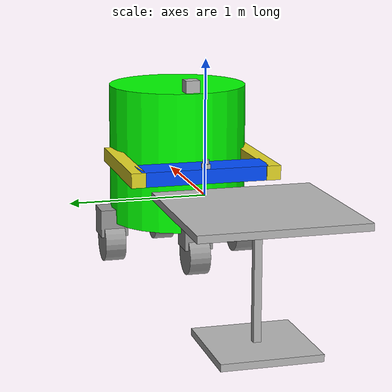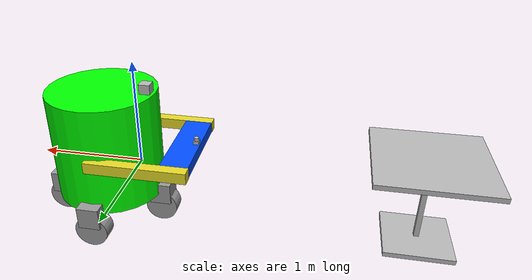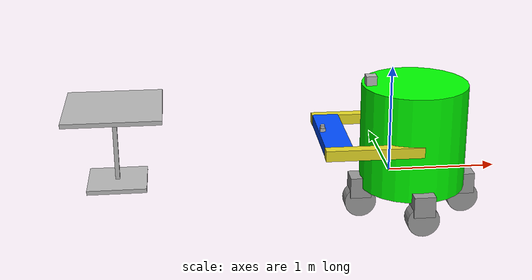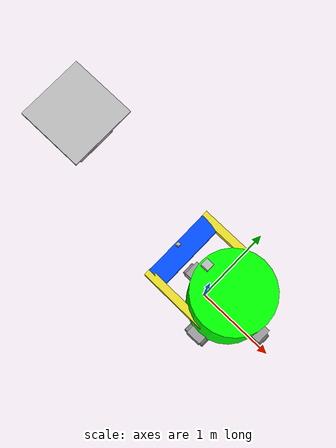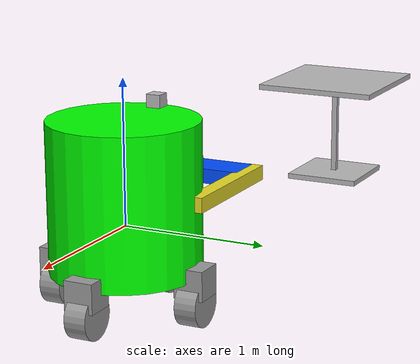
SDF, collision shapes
<?xml version='1.0'?>
<sdf version='1.6'>
  <model name='robotmodel'>
    <link name='link_0'>
      <inertial>
        <mass>1</mass>
        <inertia>
          <ixx>0.145833</ixx>
          <ixy>0</ixy>
          <ixz>0</ixz>
          <iyy>0.145833</iyy>
          <iyz>0</iyz>
          <izz>0.125</izz>
        </inertia>
        <pose frame=''>0 0 0 0 -0 0</pose>
      </inertial>
      <pose frame=''>0.250732 0.144635 -0.207594 0 -0 0.00214</pose>
      <gravity>1</gravity>
      <self_collide>0</self_collide>
      <kinematic>0</kinematic>
      <enable_wind>0</enable_wind>
      <visual name='visual'>
        <pose frame=''>0 0 0.5 0 -0 0</pose>
        <geometry>
          <cylinder>
            <radius>0.5</radius>
            <length>1</length>
          </cylinder>
        </geometry>
        <material>
          <lighting>1</lighting>
          <script>
            <uri>file://media/materials/scripts/gazebo.material</uri>
            <name>Gazebo/Grey</name>
          </script>
          <shader type='vertex'>
            <normal_map>__default__</normal_map>
          </shader>
          <ambient>0 1 0 1</ambient>
          <diffuse>0.7 0.7 0.7 1</diffuse>
          <specular>0.01 0.01 0.01 1</specular>
          <emissive>0 0 0 1</emissive>
        </material>
        <transparency>0</transparency>
        <cast_shadows>1</cast_shadows>
      </visual>
      <collision name='collision'>
        <laser_retro>0</laser_retro>
        <max_contacts>10</max_contacts>
        <pose frame=''>0 0 0.5 0 -0 0</pose>
        <geometry>
          <cylinder>
            <radius>0.5</radius>
            <length>1</length>
          </cylinder>
        </geometry>
        <surface>
          <friction>
            <ode>
              <mu>1</mu>
              <mu2>1</mu2>
              <fdir1>0 0 0</fdir1>
              <slip1>0</slip1>
              <slip2>0</slip2>
            </ode>
            <torsional>
              <coefficient>1</coefficient>
              <patch_radius>0</patch_radius>
              <surface_radius>0</surface_radius>
              <use_patch_radius>1</use_patch_radius>
              <ode>
                <slip>0</slip>
              </ode>
            </torsional>
          </friction>
          <bounce>
            <restitution_coefficient>0</restitution_coefficient>
            <threshold>1e+06</threshold>
          </bounce>
          <contact>
            <collide_without_contact>0</collide_without_contact>
            <collide_without_contact_bitmask>1</collide_without_contact_bitmask>
            <collide_bitmask>1</collide_bitmask>
            <ode>
              <soft_cfm>0</soft_cfm>
              <soft_erp>0.2</soft_erp>
              <kp>1e+13</kp>
              <kd>1</kd>
              <max_vel>0.01</max_vel>
              <min_depth>0</min_depth>
            </ode>
            <bullet>
              <split_impulse>1</split_impulse>
              <split_impulse_penetration_threshold>-0.01</split_impulse_penetration_threshold>
              <soft_cfm>0</soft_cfm>
              <soft_erp>0.2</soft_erp>
              <kp>1e+13</kp>
              <kd>1</kd>
            </bullet>
          </contact>
        </surface>
      </collision>
    </link>
    <link name='link_1'>
      <inertial>
        <mass>0.2</mass>
        <inertia>
          <ixx>0.00133333</ixx>
          <ixy>0</ixy>
          <ixz>0</ixz>
          <iyy>0.00133333</iyy>
          <iyz>0</iyz>
          <izz>0.00133333</izz>
        </inertia>
        <pose frame=''>0 0 0 0 -0 0</pose>
      </inertial>
      <pose frame=''>-0.249268 0.144635 -0.207594 0 -0 0</pose>
      <gravity>1</gravity>
      <self_collide>0</self_collide>
      <kinematic>0</kinematic>
      <enable_wind>0</enable_wind>
      <visual name='visual'>
        <pose frame=''>0 0 0 0 -0 0</pose>
        <geometry>
          <box>
            <size>0.2 0.2 0.2</size>
          </box>
        </geometry>
        <material>
          <lighting>1</lighting>
          <script>
            <uri>file://media/materials/scripts/gazebo.material</uri>
            <name>Gazebo/Grey</name>
          </script>
          <shader type='vertex'>
            <normal_map>__default__</normal_map>
          </shader>
          <ambient>0 0 0 1</ambient>
          <diffuse>0.7 0.7 0.7 1</diffuse>
          <specular>0.01 0.01 0.01 1</specular>
          <emissive>0 0 0 1</emissive>
        </material>
        <transparency>0</transparency>
        <cast_shadows>1</cast_shadows>
      </visual>
      <collision name='collision'>
        <laser_retro>0</laser_retro>
        <max_contacts>10</max_contacts>
        <pose frame=''>0 0 0 0 -0 0</pose>
        <geometry>
          <box>
            <size>0.2 0.2 0.2</size>
          </box>
        </geometry>
        <surface>
          <friction>
            <ode>
              <mu>1</mu>
              <mu2>1</mu2>
              <fdir1>0 0 0</fdir1>
              <slip1>0</slip1>
              <slip2>0</slip2>
            </ode>
            <torsional>
              <coefficient>1</coefficient>
              <patch_radius>0</patch_radius>
              <surface_radius>0</surface_radius>
              <use_patch_radius>1</use_patch_radius>
              <ode>
                <slip>0</slip>
              </ode>
            </torsional>
          </friction>
          <bounce>
            <restitution_coefficient>0</restitution_coefficient>
            <threshold>1e+06</threshold>
          </bounce>
          <contact>
            <collide_without_contact>0</collide_without_contact>
            <collide_without_contact_bitmask>1</collide_without_contact_bitmask>
            <collide_bitmask>1</collide_bitmask>
            <ode>
              <soft_cfm>0</soft_cfm>
              <soft_erp>0.2</soft_erp>
              <kp>1e+13</kp>
              <kd>1</kd>
              <max_vel>0.01</max_vel>
              <min_depth>0</min_depth>
            </ode>
            <bullet>
              <split_impulse>1</split_impulse>
              <split_impulse_penetration_threshold>-0.01</split_impulse_penetration_threshold>
              <soft_cfm>0</soft_cfm>
              <soft_erp>0.2</soft_erp>
              <kp>1e+13</kp>
              <kd>1</kd>
            </bullet>
          </contact>
        </surface>
      </collision>
    </link>
    <link name='link_1_clone'>
      <inertial>
        <mass>0.2</mass>
        <inertia>
          <ixx>0.00133333</ixx>
          <ixy>0</ixy>
          <ixz>0</ixz>
          <iyy>0.00133333</iyy>
          <iyz>0</iyz>
          <izz>0.00133333</izz>
        </inertia>
        <pose frame=''>0 0 0 0 -0 0</pose>
      </inertial>
      <pose frame=''>0.250732 0.644635 -0.207594 0 -0 0</pose>
      <gravity>1</gravity>
      <self_collide>0</self_collide>
      <kinematic>0</kinematic>
      <enable_wind>0</enable_wind>
      <visual name='visual'>
        <pose frame=''>0 0 0 0 -0 0</pose>
        <geometry>
          <box>
            <size>0.2 0.2 0.2</size>
          </box>
        </geometry>
        <material>
          <lighting>1</lighting>
          <script>
            <uri>file://media/materials/scripts/gazebo.material</uri>
            <name>Gazebo/Grey</name>
          </script>
          <shader type='vertex'>
            <normal_map>__default__</normal_map>
          </shader>
          <ambient>0 0 0 1</ambient>
          <diffuse>0.7 0.7 0.7 1</diffuse>
          <specular>0.01 0.01 0.01 1</specular>
          <emissive>0 0 0 1</emissive>
        </material>
        <transparency>0</transparency>
        <cast_shadows>1</cast_shadows>
      </visual>
      <collision name='collision'>
        <laser_retro>0</laser_retro>
        <max_contacts>10</max_contacts>
        <pose frame=''>0 0 0 0 -0 0</pose>
        <geometry>
          <box>
            <size>0.2 0.2 0.2</size>
          </box>
        </geometry>
        <surface>
          <friction>
            <ode>
              <mu>1</mu>
              <mu2>1</mu2>
              <fdir1>0 0 0</fdir1>
              <slip1>0</slip1>
              <slip2>0</slip2>
            </ode>
            <torsional>
              <coefficient>1</coefficient>
              <patch_radius>0</patch_radius>
              <surface_radius>0</surface_radius>
              <use_patch_radius>1</use_patch_radius>
              <ode>
                <slip>0</slip>
              </ode>
            </torsional>
          </friction>
          <bounce>
            <restitution_coefficient>0</restitution_coefficient>
            <threshold>1e+06</threshold>
          </bounce>
          <contact>
            <collide_without_contact>0</collide_without_contact>
            <collide_without_contact_bitmask>1</collide_without_contact_bitmask>
            <collide_bitmask>1</collide_bitmask>
            <ode>
              <soft_cfm>0</soft_cfm>
              <soft_erp>0.2</soft_erp>
              <kp>1e+13</kp>
              <kd>1</kd>
              <max_vel>0.01</max_vel>
              <min_depth>0</min_depth>
            </ode>
            <bullet>
              <split_impulse>1</split_impulse>
              <split_impulse_penetration_threshold>-0.01</split_impulse_penetration_threshold>
              <soft_cfm>0</soft_cfm>
              <soft_erp>0.2</soft_erp>
              <kp>1e+13</kp>
              <kd>1</kd>
            </bullet>
          </contact>
        </surface>
      </collision>
    </link>
    <link name='link_1_clone_0'>
      <inertial>
        <mass>0.2</mass>
        <inertia>
          <ixx>0.00133333</ixx>
          <ixy>0</ixy>
          <ixz>0</ixz>
          <iyy>0.00133333</iyy>
          <iyz>0</iyz>
          <izz>0.00133333</izz>
        </inertia>
        <pose frame=''>0 0 0 0 -0 0</pose>
      </inertial>
      <pose frame=''>0.750732 0.144635 -0.207594 0 -0 0</pose>
      <gravity>1</gravity>
      <self_collide>0</self_collide>
      <kinematic>0</kinematic>
      <enable_wind>0</enable_wind>
      <visual name='visual'>
        <pose frame=''>0 0 0 0 -0 0</pose>
        <geometry>
          <box>
            <size>0.2 0.2 0.2</size>
          </box>
        </geometry>
        <material>
          <lighting>1</lighting>
          <script>
            <uri>file://media/materials/scripts/gazebo.material</uri>
            <name>Gazebo/Grey</name>
          </script>
          <shader type='vertex'>
            <normal_map>__default__</normal_map>
          </shader>
          <ambient>0 0 0 1</ambient>
          <diffuse>0.7 0.7 0.7 1</diffuse>
          <specular>0.01 0.01 0.01 1</specular>
          <emissive>0 0 0 1</emissive>
        </material>
        <transparency>0</transparency>
        <cast_shadows>1</cast_shadows>
      </visual>
      <collision name='collision'>
        <laser_retro>0</laser_retro>
        <max_contacts>10</max_contacts>
        <pose frame=''>0 0 0 0 -0 0</pose>
        <geometry>
          <box>
            <size>0.2 0.2 0.2</size>
          </box>
        </geometry>
        <surface>
          <friction>
            <ode>
              <mu>1</mu>
              <mu2>1</mu2>
              <fdir1>0 0 0</fdir1>
              <slip1>0</slip1>
              <slip2>0</slip2>
            </ode>
            <torsional>
              <coefficient>1</coefficient>
              <patch_radius>0</patch_radius>
              <surface_radius>0</surface_radius>
              <use_patch_radius>1</use_patch_radius>
              <ode>
                <slip>0</slip>
              </ode>
            </torsional>
          </friction>
          <bounce>
            <restitution_coefficient>0</restitution_coefficient>
            <threshold>1e+06</threshold>
          </bounce>
          <contact>
            <collide_without_contact>0</collide_without_contact>
            <collide_without_contact_bitmask>1</collide_without_contact_bitmask>
            <collide_bitmask>1</collide_bitmask>
            <ode>
              <soft_cfm>0</soft_cfm>
              <soft_erp>0.2</soft_erp>
              <kp>1e+13</kp>
              <kd>1</kd>
              <max_vel>0.01</max_vel>
              <min_depth>0</min_depth>
            </ode>
            <bullet>
              <split_impulse>1</split_impulse>
              <split_impulse_penetration_threshold>-0.01</split_impulse_penetration_threshold>
              <soft_cfm>0</soft_cfm>
              <soft_erp>0.2</soft_erp>
              <kp>1e+13</kp>
              <kd>1</kd>
            </bullet>
          </contact>
        </surface>
      </collision>
    </link>
    <link name='link_1_clone_1'>
      <inertial>
        <mass>0.2</mass>
        <inertia>
          <ixx>0.00133333</ixx>
          <ixy>0</ixy>
          <ixz>0</ixz>
          <iyy>0.00133333</iyy>
          <iyz>0</iyz>
          <izz>0.00133333</izz>
        </inertia>
        <pose frame=''>0 0 0 0 -0 0</pose>
      </inertial>
      <pose frame=''>0.250732 -0.355365 -0.207594 0 -0 0</pose>
      <gravity>1</gravity>
      <self_collide>0</self_collide>
      <kinematic>0</kinematic>
      <enable_wind>0</enable_wind>
      <visual name='visual'>
        <pose frame=''>0 0 0 0 -0 0</pose>
        <geometry>
          <box>
            <size>0.2 0.2 0.2</size>
          </box>
        </geometry>
        <material>
          <lighting>1</lighting>
          <script>
            <uri>file://media/materials/scripts/gazebo.material</uri>
            <name>Gazebo/Grey</name>
          </script>
          <shader type='vertex'>
            <normal_map>__default__</normal_map>
          </shader>
          <ambient>0 0 0 1</ambient>
          <diffuse>0.7 0.7 0.7 1</diffuse>
          <specular>0.01 0.01 0.01 1</specular>
          <emissive>0 0 0 1</emissive>
        </material>
        <transparency>0</transparency>
        <cast_shadows>1</cast_shadows>
      </visual>
      <collision name='collision'>
        <laser_retro>0</laser_retro>
        <max_contacts>10</max_contacts>
        <pose frame=''>0 0 0 0 -0 0</pose>
        <geometry>
          <box>
            <size>0.2 0.2 0.2</size>
          </box>
        </geometry>
        <surface>
          <friction>
            <ode>
              <mu>1</mu>
              <mu2>1</mu2>
              <fdir1>0 0 0</fdir1>
              <slip1>0</slip1>
              <slip2>0</slip2>
            </ode>
            <torsional>
              <coefficient>1</coefficient>
              <patch_radius>0</patch_radius>
              <surface_radius>0</surface_radius>
              <use_patch_radius>1</use_patch_radius>
              <ode>
                <slip>0</slip>
              </ode>
            </torsional>
          </friction>
          <bounce>
            <restitution_coefficient>0</restitution_coefficient>
            <threshold>1e+06</threshold>
          </bounce>
          <contact>
            <collide_without_contact>0</collide_without_contact>
            <collide_without_contact_bitmask>1</collide_without_contact_bitmask>
            <collide_bitmask>1</collide_bitmask>
            <ode>
              <soft_cfm>0</soft_cfm>
              <soft_erp>0.2</soft_erp>
              <kp>1e+13</kp>
              <kd>1</kd>
              <max_vel>0.01</max_vel>
              <min_depth>0</min_depth>
            </ode>
            <bullet>
              <split_impulse>1</split_impulse>
              <split_impulse_penetration_threshold>-0.01</split_impulse_penetration_threshold>
              <soft_cfm>0</soft_cfm>
              <soft_erp>0.2</soft_erp>
              <kp>1e+13</kp>
              <kd>1</kd>
            </bullet>
          </contact>
        </surface>
      </collision>
    </link>
    <link name='link_2'>
      <inertial>
        <mass>0.2</mass>
        <inertia>
          <ixx>0.0291667</ixx>
          <ixy>0</ixy>
          <ixz>0</ixz>
          <iyy>0.0291667</iyy>
          <iyz>0</iyz>
          <izz>0.025</izz>
        </inertia>
        <pose frame=''>0 0 0 0 -0 0</pose>
      </inertial>
      <pose frame=''>0.750732 0.144635 -0.357594 -1.57 0 0</pose>
      <gravity>1</gravity>
      <self_collide>0</self_collide>
      <kinematic>0</kinematic>
      <enable_wind>0</enable_wind>
      <visual name='visual'>
        <pose frame=''>0 0 0 0 -0 0</pose>
        <geometry>
          <cylinder>
            <radius>0.15</radius>
            <length>0.15</length>
          </cylinder>
        </geometry>
        <material>
          <lighting>1</lighting>
          <script>
            <uri>file://media/materials/scripts/gazebo.material</uri>
            <name>Gazebo/Grey</name>
          </script>
          <shader type='vertex'>
            <normal_map>__default__</normal_map>
          </shader>
          <ambient>0 0 0 1</ambient>
          <diffuse>0.7 0.7 0.7 1</diffuse>
          <specular>0.01 0.01 0.01 1</specular>
          <emissive>0 0 0 1</emissive>
        </material>
        <transparency>0</transparency>
        <cast_shadows>1</cast_shadows>
      </visual>
      <collision name='collision'>
        <laser_retro>0</laser_retro>
        <max_contacts>10</max_contacts>
        <pose frame=''>0 0 0 0 -0 0</pose>
        <geometry>
          <cylinder>
            <radius>0.15</radius>
            <length>0.15</length>
          </cylinder>
        </geometry>
        <surface>
          <friction>
            <ode>
              <mu>1</mu>
              <mu2>1</mu2>
              <fdir1>0 0 0</fdir1>
              <slip1>0</slip1>
              <slip2>0</slip2>
            </ode>
            <torsional>
              <coefficient>1</coefficient>
              <patch_radius>0</patch_radius>
              <surface_radius>0</surface_radius>
              <use_patch_radius>1</use_patch_radius>
              <ode>
                <slip>0</slip>
              </ode>
            </torsional>
          </friction>
          <bounce>
            <restitution_coefficient>0</restitution_coefficient>
            <threshold>1e+06</threshold>
          </bounce>
          <contact>
            <collide_without_contact>0</collide_without_contact>
            <collide_without_contact_bitmask>1</collide_without_contact_bitmask>
            <collide_bitmask>1</collide_bitmask>
            <ode>
              <soft_cfm>0</soft_cfm>
              <soft_erp>0.2</soft_erp>
              <kp>1e+13</kp>
              <kd>1</kd>
              <max_vel>0.01</max_vel>
              <min_depth>0</min_depth>
            </ode>
            <bullet>
              <split_impulse>1</split_impulse>
              <split_impulse_penetration_threshold>-0.01</split_impulse_penetration_threshold>
              <soft_cfm>0</soft_cfm>
              <soft_erp>0.2</soft_erp>
              <kp>1e+13</kp>
              <kd>1</kd>
            </bullet>
          </contact>
        </surface>
      </collision>
    </link>
    <link name='link_2_clone'>
      <inertial>
        <mass>0.2</mass>
        <inertia>
          <ixx>0.0291667</ixx>
          <ixy>0</ixy>
          <ixz>0</ixz>
          <iyy>0.0291667</iyy>
          <iyz>0</iyz>
          <izz>0.025</izz>
        </inertia>
        <pose frame=''>0 0 0 0 -0 0</pose>
      </inertial>
      <pose frame=''>0.250732 -0.355365 -0.357594 -1.57 0 0</pose>
      <gravity>1</gravity>
      <self_collide>0</self_collide>
      <kinematic>0</kinematic>
      <enable_wind>0</enable_wind>
      <visual name='visual'>
        <pose frame=''>0 0 0 0 -0 0</pose>
        <geometry>
          <cylinder>
            <radius>0.15</radius>
            <length>0.15</length>
          </cylinder>
        </geometry>
        <material>
          <lighting>1</lighting>
          <script>
            <uri>file://media/materials/scripts/gazebo.material</uri>
            <name>Gazebo/Grey</name>
          </script>
          <shader type='vertex'>
            <normal_map>__default__</normal_map>
          </shader>
          <ambient>0 0 0 1</ambient>
          <diffuse>0.7 0.7 0.7 1</diffuse>
          <specular>0.01 0.01 0.01 1</specular>
          <emissive>0 0 0 1</emissive>
        </material>
        <transparency>0</transparency>
        <cast_shadows>1</cast_shadows>
      </visual>
      <collision name='collision'>
        <laser_retro>0</laser_retro>
        <max_contacts>10</max_contacts>
        <pose frame=''>0 0 0 0 -0 0</pose>
        <geometry>
          <cylinder>
            <radius>0.15</radius>
            <length>0.15</length>
          </cylinder>
        </geometry>
        <surface>
          <friction>
            <ode>
              <mu>1</mu>
              <mu2>1</mu2>
              <fdir1>0 0 0</fdir1>
              <slip1>0</slip1>
              <slip2>0</slip2>
            </ode>
            <torsional>
              <coefficient>1</coefficient>
              <patch_radius>0</patch_radius>
              <surface_radius>0</surface_radius>
              <use_patch_radius>1</use_patch_radius>
              <ode>
                <slip>0</slip>
              </ode>
            </torsional>
          </friction>
          <bounce>
            <restitution_coefficient>0</restitution_coefficient>
            <threshold>1e+06</threshold>
          </bounce>
          <contact>
            <collide_without_contact>0</collide_without_contact>
            <collide_without_contact_bitmask>1</collide_without_contact_bitmask>
            <collide_bitmask>1</collide_bitmask>
            <ode>
              <soft_cfm>0</soft_cfm>
              <soft_erp>0.2</soft_erp>
              <kp>1e+13</kp>
              <kd>1</kd>
              <max_vel>0.01</max_vel>
              <min_depth>0</min_depth>
            </ode>
            <bullet>
              <split_impulse>1</split_impulse>
              <split_impulse_penetration_threshold>-0.01</split_impulse_penetration_threshold>
              <soft_cfm>0</soft_cfm>
              <soft_erp>0.2</soft_erp>
              <kp>1e+13</kp>
              <kd>1</kd>
            </bullet>
          </contact>
        </surface>
      </collision>
    </link>
    <link name='link_2_clone_0'>
      <inertial>
        <mass>0.2</mass>
        <inertia>
          <ixx>0.0291667</ixx>
          <ixy>0</ixy>
          <ixz>0</ixz>
          <iyy>0.0291667</iyy>
          <iyz>0</iyz>
          <izz>0.025</izz>
        </inertia>
        <pose frame=''>0 0 0 0 -0 0</pose>
      </inertial>
      <pose frame=''>-0.249268 0.144635 -0.357594 -1.57 0 0</pose>
      <gravity>1</gravity>
      <self_collide>0</self_collide>
      <kinematic>0</kinematic>
      <enable_wind>0</enable_wind>
      <visual name='visual'>
        <pose frame=''>0 0 0 0 -0 0</pose>
        <geometry>
          <cylinder>
            <radius>0.15</radius>
            <length>0.15</length>
          </cylinder>
        </geometry>
        <material>
          <lighting>1</lighting>
          <script>
            <uri>file://media/materials/scripts/gazebo.material</uri>
            <name>Gazebo/Grey</name>
          </script>
          <shader type='vertex'>
            <normal_map>__default__</normal_map>
          </shader>
          <ambient>0 0 0 1</ambient>
          <diffuse>0.7 0.7 0.7 1</diffuse>
          <specular>0.01 0.01 0.01 1</specular>
          <emissive>0 0 0 1</emissive>
        </material>
        <transparency>0</transparency>
        <cast_shadows>1</cast_shadows>
      </visual>
      <collision name='collision'>
        <laser_retro>0</laser_retro>
        <max_contacts>10</max_contacts>
        <pose frame=''>0 0 0 0 -0 0</pose>
        <geometry>
          <cylinder>
            <radius>0.15</radius>
            <length>0.15</length>
          </cylinder>
        </geometry>
        <surface>
          <friction>
            <ode>
              <mu>1</mu>
              <mu2>1</mu2>
              <fdir1>0 0 0</fdir1>
              <slip1>0</slip1>
              <slip2>0</slip2>
            </ode>
            <torsional>
              <coefficient>1</coefficient>
              <patch_radius>0</patch_radius>
              <surface_radius>0</surface_radius>
              <use_patch_radius>1</use_patch_radius>
              <ode>
                <slip>0</slip>
              </ode>
            </torsional>
          </friction>
          <bounce>
            <restitution_coefficient>0</restitution_coefficient>
            <threshold>1e+06</threshold>
          </bounce>
          <contact>
            <collide_without_contact>0</collide_without_contact>
            <collide_without_contact_bitmask>1</collide_without_contact_bitmask>
            <collide_bitmask>1</collide_bitmask>
            <ode>
              <soft_cfm>0</soft_cfm>
              <soft_erp>0.2</soft_erp>
              <kp>1e+13</kp>
              <kd>1</kd>
              <max_vel>0.01</max_vel>
              <min_depth>0</min_depth>
            </ode>
            <bullet>
              <split_impulse>1</split_impulse>
              <split_impulse_penetration_threshold>-0.01</split_impulse_penetration_threshold>
              <soft_cfm>0</soft_cfm>
              <soft_erp>0.2</soft_erp>
              <kp>1e+13</kp>
              <kd>1</kd>
            </bullet>
          </contact>
        </surface>
      </collision>
    </link>
    <link name='link_2_clone_1'>
      <inertial>
        <mass>0.2</mass>
        <inertia>
          <ixx>0.0291667</ixx>
          <ixy>0</ixy>
          <ixz>0</ixz>
          <iyy>0.0291667</iyy>
          <iyz>0</iyz>
          <izz>0.025</izz>
        </inertia>
        <pose frame=''>0 0 0 0 -0 0</pose>
      </inertial>
      <pose frame=''>0.250732 0.644635 -0.357594 -1.57 0 0</pose>
      <gravity>1</gravity>
      <self_collide>0</self_collide>
      <kinematic>0</kinematic>
      <enable_wind>0</enable_wind>
      <visual name='visual'>
        <pose frame=''>0 0 0 0 -0 0</pose>
        <geometry>
          <cylinder>
            <radius>0.15</radius>
            <length>0.15</length>
          </cylinder>
        </geometry>
        <material>
          <lighting>1</lighting>
          <script>
            <uri>file://media/materials/scripts/gazebo.material</uri>
            <name>Gazebo/Grey</name>
          </script>
          <shader type='vertex'>
            <normal_map>__default__</normal_map>
          </shader>
          <ambient>0 0 0 1</ambient>
          <diffuse>0.7 0.7 0.7 1</diffuse>
          <specular>0.01 0.01 0.01 1</specular>
          <emissive>0 0 0 1</emissive>
        </material>
        <transparency>0</transparency>
        <cast_shadows>1</cast_shadows>
      </visual>
      <collision name='collision'>
        <laser_retro>0</laser_retro>
        <max_contacts>10</max_contacts>
        <pose frame=''>0 0 0 0 -0 0</pose>
        <geometry>
          <cylinder>
            <radius>0.15</radius>
            <length>0.15</length>
          </cylinder>
        </geometry>
        <surface>
          <friction>
            <ode>
              <mu>1</mu>
              <mu2>1</mu2>
              <fdir1>0 0 0</fdir1>
              <slip1>0</slip1>
              <slip2>0</slip2>
            </ode>
            <torsional>
              <coefficient>1</coefficient>
              <patch_radius>0</patch_radius>
              <surface_radius>0</surface_radius>
              <use_patch_radius>1</use_patch_radius>
              <ode>
                <slip>0</slip>
              </ode>
            </torsional>
          </friction>
          <bounce>
            <restitution_coefficient>0</restitution_coefficient>
            <threshold>1e+06</threshold>
          </bounce>
          <contact>
            <collide_without_contact>0</collide_without_contact>
            <collide_without_contact_bitmask>1</collide_without_contact_bitmask>
            <collide_bitmask>1</collide_bitmask>
            <ode>
              <soft_cfm>0</soft_cfm>
              <soft_erp>0.2</soft_erp>
              <kp>1e+13</kp>
              <kd>1</kd>
              <max_vel>0.01</max_vel>
              <min_depth>0</min_depth>
            </ode>
            <bullet>
              <split_impulse>1</split_impulse>
              <split_impulse_penetration_threshold>-0.01</split_impulse_penetration_threshold>
              <soft_cfm>0</soft_cfm>
              <soft_erp>0.2</soft_erp>
              <kp>1e+13</kp>
              <kd>1</kd>
            </bullet>
          </contact>
        </surface>
      </collision>
    </link>
    <link name='link_4'>
      <inertial>
        <mass>0.1</mass>
        <inertia>
          <ixx>0.00016667</ixx>
          <ixy>0</ixy>
          <ixz>0</ixz>
          <iyy>0.00683333</iyy>
          <iyz>0</iyz>
          <izz>0.00683333</izz>
        </inertia>
        <pose frame=''>0 0 0 0 -0 0</pose>
      </inertial>
      <pose frame=''>-0.199268 -0.305365 0.292406 0 0 -0.01</pose>
      <gravity>1</gravity>
      <self_collide>0</self_collide>
      <kinematic>0</kinematic>
      <enable_wind>0</enable_wind>
      <visual name='visual'>
        <pose frame=''>0 0 0 0 -0 0</pose>
        <geometry>
          <box>
            <size>0.9 0.1 0.1</size>
          </box>
        </geometry>
        <material>
          <lighting>1</lighting>
          <script>
            <uri>file://media/materials/scripts/gazebo.material</uri>
            <name>Gazebo/Yellow</name>
          </script>
          <shader type='vertex'>
            <normal_map>__default__</normal_map>
          </shader>
          <ambient>0.3 0.3 0 1</ambient>
          <diffuse>0.7 0.7 0.7 1</diffuse>
          <specular>0.01 0.01 0.01 1</specular>
          <emissive>0 0 0 1</emissive>
        </material>
        <transparency>0</transparency>
        <cast_shadows>1</cast_shadows>
      </visual>
      <collision name='collision'>
        <laser_retro>0</laser_retro>
        <max_contacts>10</max_contacts>
        <pose frame=''>0 0 0 0 -0 0</pose>
        <geometry>
          <box>
            <size>0.9 0.1 0.1</size>
          </box>
        </geometry>
        <surface>
          <friction>
            <ode>
              <mu>1</mu>
              <mu2>1</mu2>
              <fdir1>0 0 0</fdir1>
              <slip1>0</slip1>
              <slip2>0</slip2>
            </ode>
            <torsional>
              <coefficient>1</coefficient>
              <patch_radius>0</patch_radius>
              <surface_radius>0</surface_radius>
              <use_patch_radius>1</use_patch_radius>
              <ode>
                <slip>0</slip>
              </ode>
            </torsional>
          </friction>
          <bounce>
            <restitution_coefficient>0</restitution_coefficient>
            <threshold>1e+06</threshold>
          </bounce>
          <contact>
            <collide_without_contact>0</collide_without_contact>
            <collide_without_contact_bitmask>1</collide_without_contact_bitmask>
            <collide_bitmask>1</collide_bitmask>
            <ode>
              <soft_cfm>0</soft_cfm>
              <soft_erp>0.2</soft_erp>
              <kp>1e+13</kp>
              <kd>1</kd>
              <max_vel>0.01</max_vel>
              <min_depth>0</min_depth>
            </ode>
            <bullet>
              <split_impulse>1</split_impulse>
              <split_impulse_penetration_threshold>-0.01</split_impulse_penetration_threshold>
              <soft_cfm>0</soft_cfm>
              <soft_erp>0.2</soft_erp>
              <kp>1e+13</kp>
              <kd>1</kd>
            </bullet>
          </contact>
        </surface>
      </collision>
    </link>
    <link name='link_4_clone'>
      <inertial>
        <mass>0.1</mass>
        <inertia>
          <ixx>0.00016667</ixx>
          <ixy>0</ixy>
          <ixz>0</ixz>
          <iyy>0.00683333</iyy>
          <iyz>0</iyz>
          <izz>0.00683333</izz>
        </inertia>
        <pose frame=''>0 0 0 0 -0 0</pose>
      </inertial>
      <pose frame=''>-0.199268 0.645739 0.292406 0 -0 0</pose>
      <gravity>1</gravity>
      <self_collide>0</self_collide>
      <kinematic>0</kinematic>
      <enable_wind>0</enable_wind>
      <visual name='visual'>
        <pose frame=''>0 0 0 0 -0 0</pose>
        <geometry>
          <box>
            <size>0.9 0.1 0.1</size>
          </box>
        </geometry>
        <material>
          <lighting>1</lighting>
          <script>
            <uri>file://media/materials/scripts/gazebo.material</uri>
            <name>Gazebo/Yellow</name>
          </script>
          <shader type='vertex'>
            <normal_map>__default__</normal_map>
          </shader>
          <ambient>0.3 0.3 0 1</ambient>
          <diffuse>0.7 0.7 0.7 1</diffuse>
          <specular>0.01 0.01 0.01 1</specular>
          <emissive>0 0 0 1</emissive>
        </material>
        <transparency>0</transparency>
        <cast_shadows>1</cast_shadows>
      </visual>
      <collision name='collision'>
        <laser_retro>0</laser_retro>
        <max_contacts>10</max_contacts>
        <pose frame=''>0 0 0 0 -0 0</pose>
        <geometry>
          <box>
            <size>0.9 0.1 0.1</size>
          </box>
        </geometry>
        <surface>
          <friction>
            <ode>
              <mu>1</mu>
              <mu2>1</mu2>
              <fdir1>0 0 0</fdir1>
              <slip1>0</slip1>
              <slip2>0</slip2>
            </ode>
            <torsional>
              <coefficient>1</coefficient>
              <patch_radius>0</patch_radius>
              <surface_radius>0</surface_radius>
              <use_patch_radius>1</use_patch_radius>
              <ode>
                <slip>0</slip>
              </ode>
            </torsional>
          </friction>
          <bounce>
            <restitution_coefficient>0</restitution_coefficient>
            <threshold>1e+06</threshold>
          </bounce>
          <contact>
            <collide_without_contact>0</collide_without_contact>
            <collide_without_contact_bitmask>1</collide_without_contact_bitmask>
            <collide_bitmask>1</collide_bitmask>
            <ode>
              <soft_cfm>0</soft_cfm>
              <soft_erp>0.2</soft_erp>
              <kp>1e+13</kp>
              <kd>1</kd>
              <max_vel>0.01</max_vel>
              <min_depth>0</min_depth>
            </ode>
            <bullet>
              <split_impulse>1</split_impulse>
              <split_impulse_penetration_threshold>-0.01</split_impulse_penetration_threshold>
              <soft_cfm>0</soft_cfm>
              <soft_erp>0.2</soft_erp>
              <kp>1e+13</kp>
              <kd>1</kd>
            </bullet>
          </contact>
        </surface>
      </collision>
    </link>
    <link name='link_5'>
      <inertial>
        <mass>0.1</mass>
        <inertia>
          <ixx>0.0166667</ixx>
          <ixy>0</ixy>
          <ixz>0</ixz>
          <iyy>0.0166667</iyy>
          <iyz>0</iyz>
          <izz>0.0166667</izz>
        </inertia>
        <pose frame=''>0 0 0 0 -0 0</pose>
      </inertial>
      <pose frame=''>-0.519502 0.172861 0.292406 0 -0 0</pose>
      <gravity>1</gravity>
      <self_collide>0</self_collide>
      <kinematic>0</kinematic>
      <enable_wind>0</enable_wind>
      <visual name='visual'>
        <pose frame=''>0 0 0 0 -0 0</pose>
        <geometry>
          <box>
            <size>0.25 0.9 0.1</size>
          </box>
        </geometry>
        <material>
          <lighting>1</lighting>
          <script>
            <uri>file://media/materials/scripts/gazebo.material</uri>
            <name>Gazebo/Grey</name>
          </script>
          <shader type='vertex'>
            <normal_map>__default__</normal_map>
          </shader>
          <ambient>0 0.3 1 1</ambient>
          <diffuse>0.7 0.7 0.7 1</diffuse>
          <specular>0.01 0.01 0.01 1</specular>
          <emissive>0 0 0 1</emissive>
        </material>
        <transparency>0</transparency>
        <cast_shadows>1</cast_shadows>
      </visual>
      <collision name='collision'>
        <laser_retro>0</laser_retro>
        <max_contacts>10</max_contacts>
        <pose frame=''>0 0 0 0 -0 0</pose>
        <geometry>
          <box>
            <size>0.25 0.9 0.1</size>
          </box>
        </geometry>
        <surface>
          <friction>
            <ode>
              <mu>1</mu>
              <mu2>1</mu2>
              <fdir1>0 0 0</fdir1>
              <slip1>0</slip1>
              <slip2>0</slip2>
            </ode>
            <torsional>
              <coefficient>1</coefficient>
              <patch_radius>0</patch_radius>
              <surface_radius>0</surface_radius>
              <use_patch_radius>1</use_patch_radius>
              <ode>
                <slip>0</slip>
              </ode>
            </torsional>
          </friction>
          <bounce>
            <restitution_coefficient>0</restitution_coefficient>
            <threshold>1e+06</threshold>
          </bounce>
          <contact>
            <collide_without_contact>0</collide_without_contact>
            <collide_without_contact_bitmask>1</collide_without_contact_bitmask>
            <collide_bitmask>1</collide_bitmask>
            <ode>
              <soft_cfm>0</soft_cfm>
              <soft_erp>0.2</soft_erp>
              <kp>1e+13</kp>
              <kd>1</kd>
              <max_vel>0.01</max_vel>
              <min_depth>0</min_depth>
            </ode>
            <bullet>
              <split_impulse>1</split_impulse>
              <split_impulse_penetration_threshold>-0.01</split_impulse_penetration_threshold>
              <soft_cfm>0</soft_cfm>
              <soft_erp>0.2</soft_erp>
              <kp>1e+13</kp>
              <kd>1</kd>
            </bullet>
          </contact>
        </surface>
      </collision>
    </link>
    <model name='cafe_table'>
      <static>1</static>
      <link name='link'>
        <collision name='surface'>
          <pose frame=''>0 0 0.755 0 -0 0</pose>
          <geometry>
            <box>
              <size>0.913 0.913 0.04</size>
            </box>
          </geometry>
        </collision>
        <collision name='column'>
          <pose frame=''>0 0 0.37 0 -0 0</pose>
          <geometry>
            <box>
              <size>0.042 0.042 0.74</size>
            </box>
          </geometry>
        </collision>
        <collision name='base'>
          <pose frame=''>0 0 0.02 0 -0 0</pose>
          <geometry>
            <box>
              <size>0.56 0.56 0.04</size>
            </box>
          </geometry>
        </collision>
        <visual name='visual'>
          <geometry>
            <mesh>
              <uri>model://cafe_table/meshes/cafe_table.dae</uri>
            </mesh>
          </geometry>
        </visual>
      </link>
      <pose frame=''>-2.54998 0.45038 -0.207594 0 -0 0</pose>
    </model>
    <model name='camera'>
      <pose frame=''>-0.166514 0.153695 0.830531 0 -0 0</pose>
      <link name='link'>
        <inertial>
          <mass>0.1</mass>
          <inertia>
            <ixx>0.000166667</ixx>
            <iyy>0.000166667</iyy>
            <izz>0.000166667</izz>
            <ixy>0</ixy>
            <ixz>0</ixz>
            <iyz>0</iyz>
          </inertia>
        </inertial>
        <collision name='collision'>
          <geometry>
            <box>
              <size>0.1 0.1 0.1</size>
            </box>
          </geometry>
        </collision>
        <visual name='visual'>
          <geometry>
            <box>
              <size>0.1 0.1 0.1</size>
            </box>
          </geometry>
        </visual>
        <sensor name='camera' type='camera'>
          <camera name='__default__'>
            <horizontal_fov>1.047</horizontal_fov>
            <image>
              <width>320</width>
              <height>240</height>
            </image>
            <clip>
              <near>0.1</near>
              <far>100</far>
            </clip>
          </camera>
          <always_on>1</always_on>
          <update_rate>30</update_rate>
          <visualize>1</visualize>
        </sensor>
      </link>
    </model>
    <model name='hokuyo'>
      <pose frame=''>-0.609025 0.171147 0.368203 0 -0 -1.56152</pose>
      <link name='link'>
        <inertial>
          <mass>0.1</mass>
        </inertial>
        <visual name='visual'>
          <geometry>
            <mesh>
              <uri>model://hokuyo/meshes/hokuyo.dae</uri>
            </mesh>
          </geometry>
        </visual>
        <collision name='collision-base'>
          <pose frame=''>0 0 -0.0145 0 -0 0</pose>
          <geometry>
            <box>
              <size>0.05 0.05 0.041</size>
            </box>
          </geometry>
        </collision>
        <collision name='collision-top'>
          <pose frame=''>0 0 0.0205 0 -0 0</pose>
          <geometry>
            <cylinder>
              <radius>0.021</radius>
              <length>0.029</length>
            </cylinder>
          </geometry>
        </collision>
        <sensor name='laser' type='ray'>
          <pose frame=''>0.01 0 0.0175 0 -0 0</pose>
          <ray>
            <scan>
              <horizontal>
                <samples>640</samples>
                <resolution>1</resolution>
                <min_angle>-2.26889</min_angle>
                <max_angle>2.2689</max_angle>
              </horizontal>
            </scan>
            <range>
              <min>0.08</min>
              <max>10</max>
              <resolution>0.01</resolution>
            </range>
          </ray>
          <plugin name='laser' filename='libRayPlugin.so'/>
          <always_on>1</always_on>
          <update_rate>30</update_rate>
          <visualize>1</visualize>
        </sensor>
      </link>
    </model>
    <joint name='link_0_JOINT_14' type='fixed'>
      <parent>link_0</parent>
      <child>link_4</child>
      <pose frame=''>0.45 0 0 0 -0 0</pose>
      <physics>
        <ode>
          <limit>
            <cfm>0</cfm>
            <erp>0.2</erp>
          </limit>
          <suspension>
            <cfm>0</cfm>
            <erp>0.2</erp>
          </suspension>
        </ode>
      </physics>
    </joint>
    <joint name='link_0_JOINT_15' type='fixed'>
      <parent>link_0</parent>
      <child>link_4_clone</child>
      <pose frame=''>0.45 0 0 0 -0 0</pose>
      <physics>
        <ode>
          <limit>
            <cfm>0</cfm>
            <erp>0.2</erp>
          </limit>
          <suspension>
            <cfm>0</cfm>
            <erp>0.2</erp>
          </suspension>
        </ode>
      </physics>
    </joint>
    <joint name='link_0_JOINT_20' type='fixed'>
      <parent>link_0</parent>
      <child>camera::link</child>
      <pose frame=''>0 0 0 0 0 -3.14</pose>
      <physics>
        <ode>
          <limit>
            <cfm>0</cfm>
            <erp>0.2</erp>
          </limit>
          <suspension>
            <cfm>0</cfm>
            <erp>0.2</erp>
          </suspension>
        </ode>
      </physics>
    </joint>
    <joint name='link_0_JOINT_2' type='revolute'>
      <parent>link_0</parent>
      <child>link_1</child>
      <pose frame=''>0 0 0 0 -0 0</pose>
      <axis>
        <xyz>0 0 1</xyz>
        <use_parent_model_frame>0</use_parent_model_frame>
        <limit>
          <lower>-1.79769e+308</lower>
          <upper>1.79769e+308</upper>
          <effort>-1</effort>
          <velocity>-1</velocity>
        </limit>
        <dynamics>
          <spring_reference>0</spring_reference>
          <spring_stiffness>0</spring_stiffness>
          <damping>0</damping>
        </dynamics>
      </axis>
      <physics>
        <ode>
          <limit>
            <cfm>0</cfm>
            <erp>0.2</erp>
          </limit>
          <suspension>
            <cfm>0</cfm>
            <erp>0.2</erp>
          </suspension>
        </ode>
      </physics>
    </joint>
    <joint name='link_0_JOINT_3' type='fixed'>
      <parent>link_0</parent>
      <child>link_1_clone</child>
      <pose frame=''>0 0 0 0 -0 0</pose>
      <physics>
        <ode>
          <limit>
            <cfm>0</cfm>
            <erp>0.2</erp>
          </limit>
          <suspension>
            <cfm>0</cfm>
            <erp>0.2</erp>
          </suspension>
        </ode>
      </physics>
    </joint>
    <joint name='link_0_JOINT_4' type='revolute'>
      <parent>link_0</parent>
      <child>link_1_clone_0</child>
      <pose frame=''>0 0 0 0 -0 0</pose>
      <axis>
        <xyz>0 0 1</xyz>
        <use_parent_model_frame>0</use_parent_model_frame>
        <limit>
          <lower>-1.79769e+308</lower>
          <upper>1.79769e+308</upper>
          <effort>-1</effort>
          <velocity>-1</velocity>
        </limit>
        <dynamics>
          <spring_reference>0</spring_reference>
          <spring_stiffness>0</spring_stiffness>
          <damping>0</damping>
        </dynamics>
      </axis>
      <physics>
        <ode>
          <limit>
            <cfm>0</cfm>
            <erp>0.2</erp>
          </limit>
          <suspension>
            <cfm>0</cfm>
            <erp>0.2</erp>
          </suspension>
        </ode>
      </physics>
    </joint>
    <joint name='link_0_JOINT_6' type='fixed'>
      <parent>link_0</parent>
      <child>link_1_clone_1</child>
      <pose frame=''>0 0 0 0 -0 0</pose>
      <physics>
        <ode>
          <limit>
            <cfm>0</cfm>
            <erp>0.2</erp>
          </limit>
          <suspension>
            <cfm>0</cfm>
            <erp>0.2</erp>
          </suspension>
        </ode>
      </physics>
    </joint>
    <joint name='link_1_JOINT_9' type='revolute'>
      <parent>link_1</parent>
      <child>link_2_clone_0</child>
      <pose frame=''>0 0 0 0 -0 0</pose>
      <axis>
        <xyz>-0 -0 -1</xyz>
        <use_parent_model_frame>0</use_parent_model_frame>
        <limit>
          <lower>-1.79769e+308</lower>
          <upper>1.79769e+308</upper>
          <effort>-1</effort>
          <velocity>-1</velocity>
        </limit>
        <dynamics>
          <spring_reference>0</spring_reference>
          <spring_stiffness>0</spring_stiffness>
          <damping>0</damping>
        </dynamics>
      </axis>
      <physics>
        <ode>
          <limit>
            <cfm>0</cfm>
            <erp>0.2</erp>
          </limit>
          <suspension>
            <cfm>0</cfm>
            <erp>0.2</erp>
          </suspension>
        </ode>
      </physics>
    </joint>
    <joint name='link_1_clone_0_JOINT_7' type='revolute'>
      <parent>link_1_clone_0</parent>
      <child>link_2</child>
      <pose frame=''>0 0 0 0 -0 0</pose>
      <axis>
        <xyz>-0 -0 -1</xyz>
        <use_parent_model_frame>0</use_parent_model_frame>
        <limit>
          <lower>-1.79769e+308</lower>
          <upper>1.79769e+308</upper>
          <effort>-1</effort>
          <velocity>-1</velocity>
        </limit>
        <dynamics>
          <spring_reference>0</spring_reference>
          <spring_stiffness>0</spring_stiffness>
          <damping>0</damping>
        </dynamics>
      </axis>
      <physics>
        <ode>
          <limit>
            <cfm>0</cfm>
            <erp>0.2</erp>
          </limit>
          <suspension>
            <cfm>0</cfm>
            <erp>0.2</erp>
          </suspension>
        </ode>
      </physics>
    </joint>
    <joint name='link_1_clone_1_JOINT_10' type='revolute'>
      <parent>link_1_clone_1</parent>
      <child>link_2_clone</child>
      <pose frame=''>0 0 0 0 -0 0</pose>
      <axis>
        <xyz>-0 -0 -1</xyz>
        <use_parent_model_frame>0</use_parent_model_frame>
        <limit>
          <lower>-1.79769e+308</lower>
          <upper>1.79769e+308</upper>
          <effort>-1</effort>
          <velocity>-1</velocity>
        </limit>
        <dynamics>
          <spring_reference>0</spring_reference>
          <spring_stiffness>0</spring_stiffness>
          <damping>0</damping>
        </dynamics>
      </axis>
      <physics>
        <ode>
          <limit>
            <cfm>0</cfm>
            <erp>0.2</erp>
          </limit>
          <suspension>
            <cfm>0</cfm>
            <erp>0.2</erp>
          </suspension>
        </ode>
      </physics>
    </joint>
    <joint name='link_1_clone_JOINT_8' type='revolute'>
      <parent>link_1_clone</parent>
      <child>link_2_clone_1</child>
      <pose frame=''>0 0 0 0 -0 0</pose>
      <axis>
        <xyz>-0 -0 -1</xyz>
        <use_parent_model_frame>0</use_parent_model_frame>
        <limit>
          <lower>-1.79769e+308</lower>
          <upper>1.79769e+308</upper>
          <effort>-1</effort>
          <velocity>-1</velocity>
        </limit>
        <dynamics>
          <spring_reference>0</spring_reference>
          <spring_stiffness>0</spring_stiffness>
          <damping>0</damping>
        </dynamics>
      </axis>
      <physics>
        <ode>
          <limit>
            <cfm>0</cfm>
            <erp>0.2</erp>
          </limit>
          <suspension>
            <cfm>0</cfm>
            <erp>0.2</erp>
          </suspension>
        </ode>
      </physics>
    </joint>
    <joint name='link_4_JOINT_16' type='fixed'>
      <parent>link_4</parent>
      <child>link_5</child>
      <pose frame=''>0 0 0 0 -0 0</pose>
      <physics>
        <ode>
          <limit>
            <cfm>0</cfm>
            <erp>0.2</erp>
          </limit>
          <suspension>
            <cfm>0</cfm>
            <erp>0.2</erp>
          </suspension>
        </ode>
      </physics>
    </joint>
    <joint name='link_5_JOINT_19' type='fixed'>
      <parent>link_5</parent>
      <child>hokuyo::link</child>
      <pose frame=''>0 0 0 0 0 -1.57</pose>
      <physics>
        <ode>
          <limit>
            <cfm>0</cfm>
            <erp>0.2</erp>
          </limit>
          <suspension>
            <cfm>0</cfm>
            <erp>0.2</erp>
          </suspension>
        </ode>
      </physics>
    </joint>
    <static>0</static>
    <allow_auto_disable>1</allow_auto_disable>
  </model>
</sdf>
